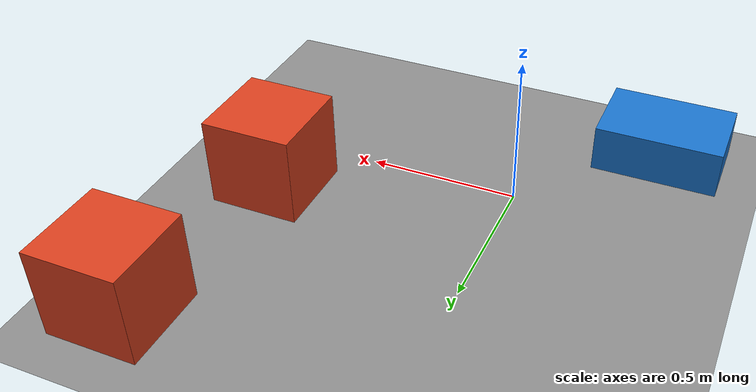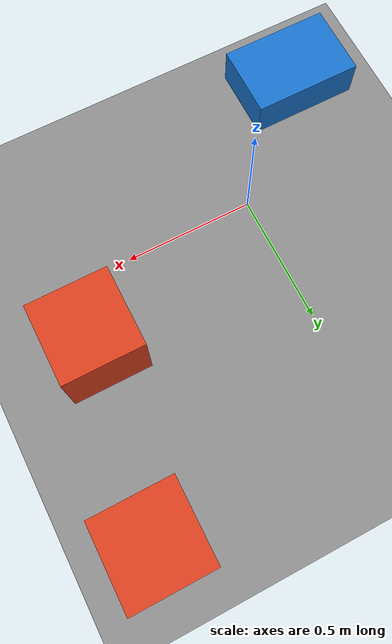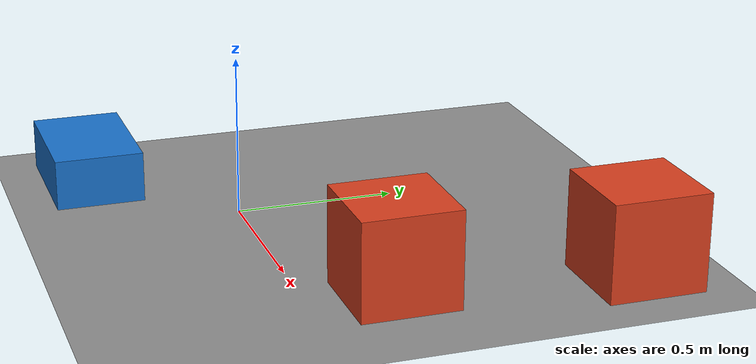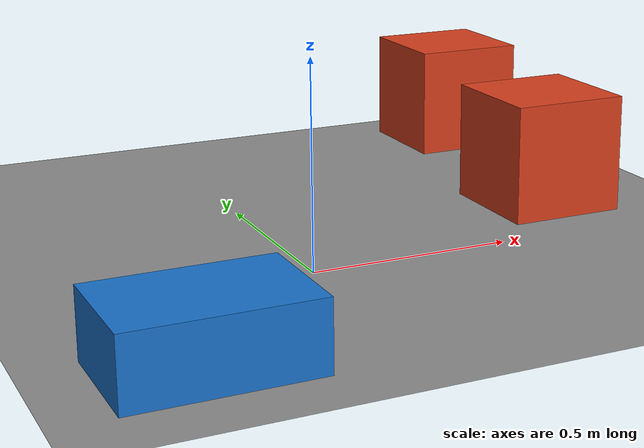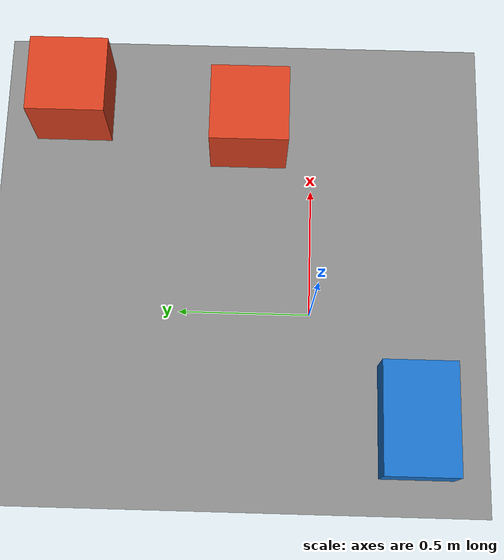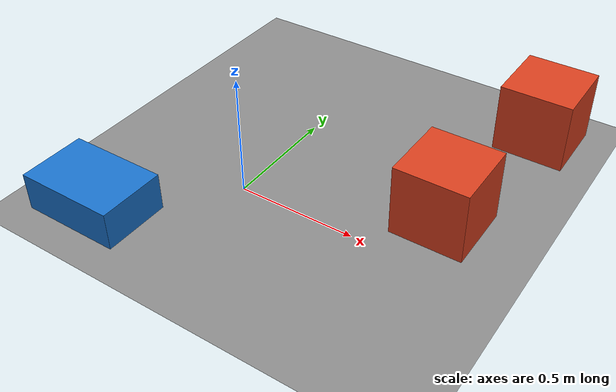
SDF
<?xml version="1.0" ?>
<sdf version="1.9">
  <world name="leader_follower_world">
    <physics name="1ms" type="ignored">
      <max_step_size>0.001</max_step_size>
      <real_time_factor>1.0</real_time_factor>
    </physics>
    <plugin filename="gz-sim-physics-system" name="gz::sim::systems::Physics"/>
    <plugin filename="gz-sim-scene-broadcaster-system" name="gz::sim::systems::SceneBroadcaster"/>
    <light type="directional" name="sun">
      <cast_shadows>true</cast_shadows>
      <pose>0 0 10 0 0 0</pose>
      <diffuse>0.8 0.8 0.8 1</diffuse>
      <specular>0.2 0.2 0.2 1</specular>
      <direction>-0.5 0.1 -0.9</direction>
    </light>
    <model name="ground_plane">
      <static>true</static>
      <link name="link">
        <collision name="collision"><geometry><plane><normal>0 0 1</normal><size>10 10</size></plane></geometry></collision>
        <visual name="visual"><geometry><plane><normal>0 0 1</normal><size>10 10</size></plane></geometry><material><ambient>0.55 0.55 0.55 1</ambient></material></visual>
      </link>
    </model>
    <include>
      <uri>model://simple_ugv</uri>
      <pose>-0.4 -0.4 0.08 0 0 0</pose>
    </include>
    <include>
      <uri>model://obstacle_box</uri>
      <name>obstacle_box_1</name>
      <pose>0.75 0.25 0.15 0 0 0</pose>
    </include>
    <include>
      <uri>model://obstacle_box</uri>
      <name>obstacle_box_2</name>
      <pose>0.85 0.95 0.15 0 0 0</pose>
    </include>
  </world>
</sdf>

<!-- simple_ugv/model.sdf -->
<sdf version="1.9">
  <model name="simple_ugv">
    <pose>0 0 0.08 0 0 0</pose>
    <link name="base_link">
      <inertial><mass>3.0</mass></inertial>
      <collision name="body_collision">
        <geometry><box><size>0.42 0.28 0.16</size></box></geometry>
      </collision>
      <visual name="body_visual">
        <geometry><box><size>0.42 0.28 0.16</size></box></geometry>
        <material><ambient>0.1 0.45 0.8 1</ambient><diffuse>0.1 0.45 0.8 1</diffuse></material>
      </visual>
    </link>
  </model>
</sdf>

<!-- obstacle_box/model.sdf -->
<sdf version="1.9">
  <model name="obstacle_box">
    <static>true</static>
    <link name="link">
      <collision name="collision"><geometry><box><size>0.30 0.30 0.30</size></box></geometry></collision>
      <visual name="visual">
        <geometry><box><size>0.30 0.30 0.30</size></box></geometry>
        <material><ambient>0.85 0.25 0.12 1</ambient><diffuse>0.85 0.25 0.12 1</diffuse></material>
      </visual>
    </link>
  </model>
</sdf>
